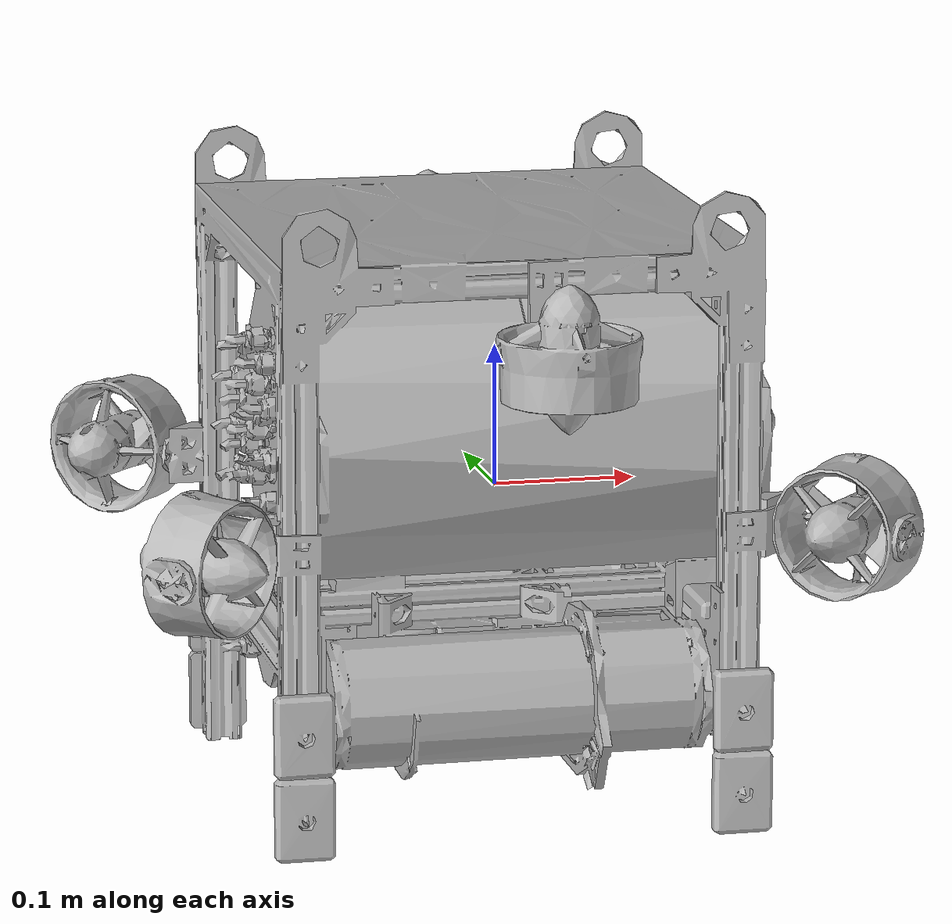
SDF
<?xml version='1.0'?>
<sdf version='1.7'>
  <model name='triton_full'>

    <!-- Frame -->
    <include name='frame'>
      <uri>model://triton_frame</uri>
      <pose>0 0 0 0 -0 0</pose>
      <name>frame</name>
    </include>

    <!-- Thrusters -->
    <include name='thruster1'>
      <uri>model://triton_thruster</uri>
      <pose>0.2035 -0.18 0 0 -1.5707 0.785398</pose>
      <name>thruster1</name>
    </include>

    <include name='thruster2'>
      <uri>model://triton_thruster</uri>
      <pose>0.2035 0.18 0 0 1.5707 2.35619</pose>
      <name>thruster2</name>
    </include>

    <include name='thruster3'>
      <uri>model://triton_thruster</uri>
      <pose>-0.235 -0.189 0 0 1.5707 -0.785398</pose>
      <name>thruster3</name>
    </include>

    <include name='thruster4'>
      <uri>model://triton_thruster</uri>
      <pose>-0.235 0.189 0 0 -1.5707 -2.35619</pose>
      <name>thruster4</name>
    </include>

    <include name='thruster5'>
      <uri>model://triton_thruster</uri>
      <pose>0 -0.22 0.13 3.1415 0 0</pose>
      <name>thruster5</name>
    </include>

    <include name='thruster6'>
      <uri>model://triton_thruster</uri>
      <pose>0 0.22 0.13 3.1415 0 3.1415</pose>
      <name>thruster6</name>
    </include>

    <!--

      Fixed Joints within AUV

    -->
    <joint name='frame_thruster1' type='fixed'>
      <parent>frame::frame</parent>
      <child>thruster1::thruster</child>
      <pose>0 0 0 0 -0 0</pose>
      <physics>
        <ode>
          <limit>
            <cfm>0</cfm>
            <erp>0.2</erp>
          </limit>
          <suspension>
            <cfm>0</cfm>
            <erp>0.2</erp>
          </suspension>
        </ode>
      </physics>
    </joint>

    <joint name='frame_thruster2' type='fixed'>
      <parent>frame::frame</parent>
      <child>thruster2::thruster</child>
      <pose>0 0 0 0 -0 0</pose>
      <physics>
        <ode>
          <limit>
            <cfm>0</cfm>
            <erp>0.2</erp>
          </limit>
          <suspension>
            <cfm>0</cfm>
            <erp>0.2</erp>
          </suspension>
        </ode>
      </physics>
    </joint>

    <joint name='frame_thruster3' type='fixed'>
      <parent>frame::frame</parent>
      <child>thruster3::thruster</child>
      <pose>0 0 0 0 -0 0</pose>
      <physics>
        <ode>
          <limit>
            <cfm>0</cfm>
            <erp>0.2</erp>
          </limit>
          <suspension>
            <cfm>0</cfm>
            <erp>0.2</erp>
          </suspension>
        </ode>
      </physics>
    </joint>

    <joint name='frame_thruster4' type='fixed'>
      <parent>frame::frame</parent>
      <child>thruster4::thruster</child>
      <pose>0 0 0 0 -0 0</pose>
      <physics>
        <ode>
          <limit>
            <cfm>0</cfm>
            <erp>0.2</erp>
          </limit>
          <suspension>
            <cfm>0</cfm>
            <erp>0.2</erp>
          </suspension>
        </ode>
      </physics>
    </joint>

    <joint name='frame_thruster5' type='fixed'>
      <parent>frame::frame</parent>
      <child>thruster5::thruster</child>
      <pose>0 0 0 0 -0 0</pose>
      <physics>
        <ode>
          <limit>
            <cfm>0</cfm>
            <erp>0.2</erp>
          </limit>
          <suspension>
            <cfm>0</cfm>
            <erp>0.2</erp>
          </suspension>
        </ode>
      </physics>
    </joint>

    <joint name='frame_thruster6' type='fixed'>
      <parent>frame::frame</parent>
      <child>thruster6::thruster</child>
      <pose>0 0 0 0 -0 0</pose>
      <physics>
        <ode>
          <limit>
            <cfm>0</cfm>
            <erp>0.2</erp>
          </limit>
          <suspension>
            <cfm>0</cfm>
            <erp>0.2</erp>
          </suspension>
        </ode>
      </physics>
    </joint>

    <!--

      Plugins

    -->

    <!-- Thrust Vectors -->
    <plugin name="gazebo_force_controller" filename="libgazebo_ros_force.so">
        <ros>
            <namespace>/triton/gazebo_drivers</namespace>
            <remapping>gazebo_ros_force:=force_t1</remapping>
        </ros>
        <link_name>thruster1::thruster</link_name>
        <force_frame>world</force_frame>
    </plugin>

    <plugin name="gazebo_force_controller" filename="libgazebo_ros_force.so">
        <ros>
            <namespace>/triton/gazebo_drivers</namespace>
            <remapping>gazebo_ros_force:=force_t2</remapping>
        </ros>
        <link_name>thruster2::thruster</link_name>
        <force_frame>world</force_frame>
    </plugin>

    <plugin name="gazebo_force_controller" filename="libgazebo_ros_force.so">
        <ros>
            <namespace>/triton/gazebo_drivers</namespace>
            <remapping>gazebo_ros_force:=force_t3</remapping>
        </ros>
        <link_name>thruster3::thruster</link_name>
        <force_frame>world</force_frame>
    </plugin>

    <plugin name="gazebo_force_controller" filename="libgazebo_ros_force.so">
        <ros>
            <namespace>/triton/gazebo_drivers</namespace>
            <remapping>gazebo_ros_force:=force_t4</remapping>
        </ros>
        <link_name>thruster4::thruster</link_name>
        <force_frame>world</force_frame>
    </plugin>

    <plugin name="gazebo_force_controller" filename="libgazebo_ros_force.so">
        <ros>
            <namespace>/triton/gazebo_drivers</namespace>
            <remapping>gazebo_ros_force:=force_t5</remapping>
        </ros>
        <link_name>thruster5::thruster</link_name>
        <force_frame>world</force_frame>
    </plugin>

    <plugin name="gazebo_force_controller" filename="libgazebo_ros_force.so">
        <ros>
            <namespace>/triton/gazebo_drivers</namespace>
            <remapping>gazebo_ros_force:=force_t6</remapping>
        </ros>
        <link_name>thruster6::thruster</link_name>
        <force_frame>world</force_frame>
    </plugin>

    <!-- Buoyancy Plugin -->
    <plugin name="buoyancy" filename="libBuoyancyPlugin.so">
      <!-- fluid density determines sub buoyancy, lower density equals more positivly buoyant-->
      <fluid_density>275.000</fluid_density>
    </plugin>

    <static>0</static>
    <allow_auto_disable>1</allow_auto_disable>

  </model>
</sdf>

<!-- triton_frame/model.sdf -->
<sdf version='1.7'>
  <model name='triton_frame'>
    <link name='frame'>

      <!-- pose relaive to STL file origin, was moved to AUV center using Blender -->
      <!-- Edited for Steelhead Mini Aug 9 2024-->
      <inertial>
        <mass>29.4835</mass>
        <inertia>
          <ixx> 0.548853532</ixx>
          <ixy> 0.000990367</ixy>
          <ixz> 0.007434770</ixz>
          <iyy> 0.725638212</iyy>
          <iyz> 0.045963196</iyz>
          <izz> 1.077000000</izz>
        </inertia>
        <pose>0.1 -0.062 -0.00878 0 -0 0</pose>
      </inertial>

      <!-- Visual Data -->
      <visual name='visual'>
        <pose>0 0 0 0 0 0</pose>
        <geometry>
          <mesh>
            <uri>model://triton_frame/meshes/triton_frame.stl</uri>
            <scale>1 1 1</scale>
          </mesh>
        </geometry>
        <material>
          <lighting>1</lighting>
          <shader type='pixel'/>
        </material>
        <transparency>0</transparency>
        <cast_shadows>1</cast_shadows>
      </visual>

      <gravity>1</gravity>

      <!-- Collision Data-->
      <collision name='collision'>
        <laser_retro>0</laser_retro>
        <max_contacts>10</max_contacts>
        <pose>0 0 0 0 0 0</pose>
        <geometry>
          <mesh>
            <uri>model://triton_frame/meshes/triton_frame.stl</uri>
            <scale>1 1 1</scale>
          </mesh>
        </geometry>
        <!-- Surface Data consists of default value, we should reseach better numbers-->
        <surface>
          <friction>
            <ode>
              <mu>1</mu>
              <mu2>1</mu2>
              <fdir1>0 0 0</fdir1>
              <slip1>0</slip1>
              <slip2>0</slip2>
            </ode>
            <torsional>
              <coefficient>1</coefficient>
              <patch_radius>0</patch_radius>
              <surface_radius>0</surface_radius>
              <use_patch_radius>1</use_patch_radius>
              <ode>
                <slip>0</slip>
              </ode>
            </torsional>
          </friction>
          <bounce>
            <restitution_coefficient>0</restitution_coefficient>
            <threshold>1e+06</threshold>
          </bounce>
          <contact>
            <collide_without_contact>0</collide_without_contact>
            <collide_without_contact_bitmask>1</collide_without_contact_bitmask>
            <collide_bitmask>1</collide_bitmask>
            <ode>
              <soft_cfm>0</soft_cfm>
              <soft_erp>0.2</soft_erp>
              <kp>1e+13</kp>
              <kd>1</kd>
              <max_vel>0.01</max_vel>
              <min_depth>0</min_depth>
            </ode>
            <bullet>
              <split_impulse>1</split_impulse>
              <split_impulse_penetration_threshold>-0.01</split_impulse_penetration_threshold>
              <soft_cfm>0</soft_cfm>
              <soft_erp>0.2</soft_erp>
              <kp>1e+13</kp>
              <kd>1</kd>
            </bullet>
          </contact>
        </surface>
      </collision>

      <sensor type="camera" name="front_camera">
        <pose>0.57 -0.05 0 0 0 0 </pose>
        <update_rate>60</update_rate>
        <visualize>true</visualize>
        <camera name="front">
          <horizontal_fov>1.3962634</horizontal_fov>
          <image>
            <width>640</width>
            <height>480</height>
            <format>R8G8B8</format>
          </image>
          <clip>
            <near>0.02</near>
            <far>300</far>
          </clip>
          <noise>
            <type>gaussian</type>
            <mean>0.0</mean>
            <stddev>0.007</stddev>
          </noise>
        </camera>
        <plugin name="front_camera" filename="libgazebo_ros_camera.so">
          <ros>
            <namespace>/triton/drivers</namespace>
          </ros>
        </plugin>
      </sensor>
      <sensor type="camera" name="down_camera">
        <pose>0.05 -0.17 0 0 1.57 0</pose>
        <update_rate>60</update_rate>
        <visualize>true</visualize>
        <camera name="down">
          <horizontal_fov>1.3962634</horizontal_fov>
          <image>
            <width>640</width>
            <height>480</height>
            <format>R8G8B8</format>
          </image>
          <clip>
            <near>0.02</near>
            <far>300</far>
          </clip>
          <noise>
            <type>gaussian</type>
            <mean>0.0</mean>
            <stddev>0.007</stddev>
          </noise>
        </camera>
        <plugin name="down_camera" filename="libgazebo_ros_camera.so">
          <ros>
            <namespace>/triton/drivers</namespace>
          </ros>
        </plugin>
      </sensor>
      <sensor name="imu_sensor" type="imu">
        <always_on>true</always_on>
        <update_rate>100</update_rate>
        <visualize>true</visualize>
        <topic>imu</topic>
        <plugin filename="libgazebo_ros_imu_sensor.so" name="imu">
          <topicName>imu</topicName>
          <bodyName>imu_link</bodyName>
          <updateRateHZ>100.0</updateRateHZ>
          <gaussianNoise>0</gaussianNoise>
          <xyzOffset>0 0 0</xyzOffset>
          <rpyOffset>0 0 0</rpyOffset>
          <frameName>imu_link</frameName>
          <initialOrientationAsReference>false</initialOrientationAsReference>
          <ros>
            <namespace>/triton/drivers</namespace>
          </ros>
        </plugin>
        <pose>0 0 0 0 0 0</pose>
      </sensor>
    </link>

    <static>0</static>
    <allow_auto_disable>1</allow_auto_disable>
  </model>
</sdf>

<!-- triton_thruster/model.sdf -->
<sdf version='1.7'>
  <model name='triton_thruster'>
    <link name='thruster'>
      <pose>-0 0 0 0 -0 0</pose>
      <inertial>
        <mass>0.000001</mass>
        <inertia>
          <ixx>0.00030988</ixx>
          <ixy>5.5564e-08</ixy>
          <ixz>3.9324e-07</ixz>
          <iyy>0.0003498</iyy>
          <iyz>1.7659e-06</iyz>
          <izz>0.00030001</izz>
        </inertia>
      </inertial>

      <gravity>1</gravity>

      <!-- Visual Data -->
      <visual name='visual'>
        <pose>0 0 0 0 -0 0</pose>
        <geometry>
          <mesh>
            <uri>model://triton_thruster/meshes/triton_thruster.dae</uri>
            <scale>1 1 1</scale>
          </mesh>
        </geometry>
        <material>
          <lighting>1</lighting>
          <shader type='pixel'/>
        </material>
        <transparency>0</transparency>
        <cast_shadows>1</cast_shadows>
      </visual>

      <!-- Collision Data-->
      <collision name='collision'>
        <laser_retro>0</laser_retro>
        <max_contacts>10</max_contacts>
        <pose>0 0 0 0 -0 0</pose>
        <geometry>
          <mesh>
            <uri>model://triton_thruster/meshes/triton_thruster.dae</uri>
            <scale>1 1 1</scale>
          </mesh>
        </geometry>
        <!-- Surface Data consists of default value, we should reseach better numbers-->
        <surface>
          <friction>
            <ode>
              <mu>1</mu>
              <mu2>1</mu2>
              <fdir1>0 0 0</fdir1>
              <slip1>0</slip1>
              <slip2>0</slip2>
            </ode>
            <torsional>
              <coefficient>1</coefficient>
              <patch_radius>0</patch_radius>
              <surface_radius>0</surface_radius>
              <use_patch_radius>1</use_patch_radius>
              <ode>
                <slip>0</slip>
              </ode>
            </torsional>
          </friction>
          <bounce>
            <restitution_coefficient>0</restitution_coefficient>
            <threshold>1e+06</threshold>
          </bounce>
          <contact>
            <collide_without_contact>0</collide_without_contact>
            <collide_without_contact_bitmask>1</collide_without_contact_bitmask>
            <collide_bitmask>1</collide_bitmask>
            <ode>
              <soft_cfm>0</soft_cfm>
              <soft_erp>0.2</soft_erp>
              <kp>1e+13</kp>
              <kd>1</kd>
              <max_vel>0.01</max_vel>
              <min_depth>0</min_depth>
            </ode>
            <bullet>
              <split_impulse>1</split_impulse>
              <split_impulse_penetration_threshold>-0.01</split_impulse_penetration_threshold>
              <soft_cfm>0</soft_cfm>
              <soft_erp>0.2</soft_erp>
              <kp>1e+13</kp>
              <kd>1</kd>
            </bullet>
          </contact>
        </surface>
      </collision>

    </link>
    <static>0</static>
    <allow_auto_disable>1</allow_auto_disable>
  </model>
</sdf>
